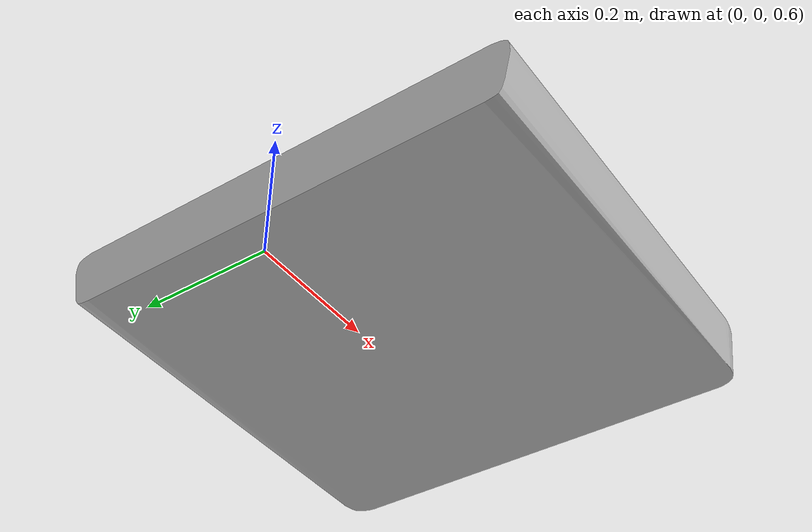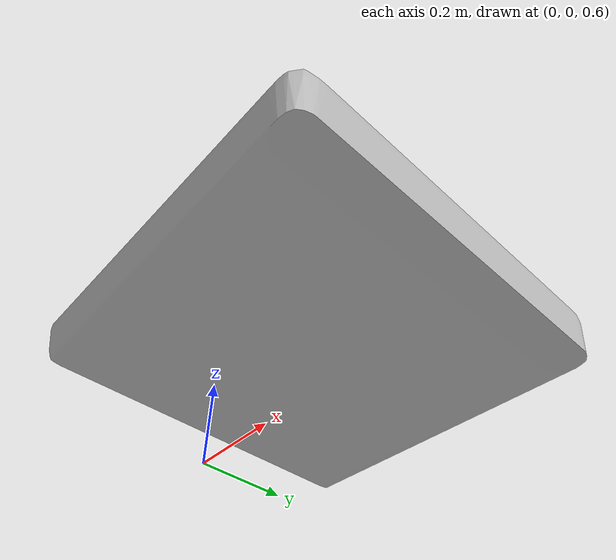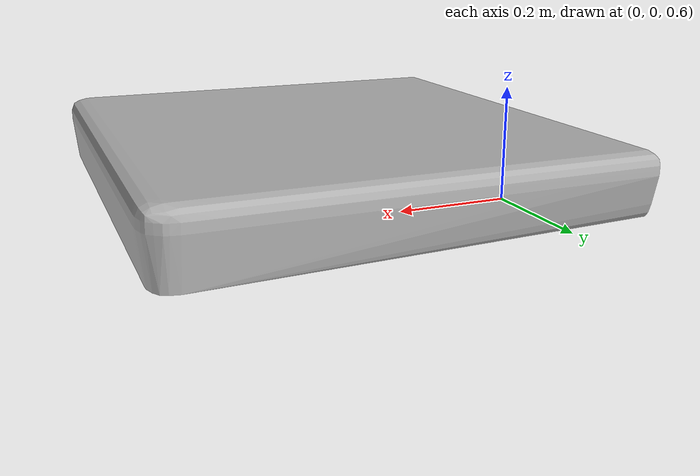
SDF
<?xml version='1.0' encoding='utf-8'?>
<sdf version="1.7">
  <model name="work_desk">
    <link name="base_link">
      <inertial>
        <mass>23.000000</mass>
        <pose>0.000649 0.678391 0.001222 0 0 0</pose>
        <inertia>
          <ixx>1.914762</ixx>
          <iyy>6.127021</iyy>
          <izz>5.364524</izz>
          <ixy>-0.004533</ixy>
          <ixz>0.000683</ixz>
          <iyz>-0.002133</iyz>
        </inertia>
      </inertial>
      <visual name="visual">
        <geometry>
          <mesh>
            <uri>work_desk.gltf</uri>
          </mesh>
        </geometry>
      </visual>
      <collision name="collision_0">
        <surface>
          <friction>
            <ode>
              <mu>0.500</mu>
              <mu2>0.500</mu2>
            </ode>
          </friction>
        </surface>
        <geometry>
          <mesh>
            <uri>work_desk_collision_0.obj</uri>
          </mesh>
        </geometry>
      </collision>
      <collision name="collision_1">
        <surface>
          <friction>
            <ode>
              <mu>0.500</mu>
              <mu2>0.500</mu2>
            </ode>
          </friction>
        </surface>
        <geometry>
          <mesh>
            <uri>work_desk_collision_1.obj</uri>
          </mesh>
        </geometry>
      </collision>
      <collision name="collision_2">
        <surface>
          <friction>
            <ode>
              <mu>0.500</mu>
              <mu2>0.500</mu2>
            </ode>
          </friction>
        </surface>
        <geometry>
          <mesh>
            <uri>work_desk_collision_2.obj</uri>
          </mesh>
        </geometry>
      </collision>
      <collision name="collision_3">
        <surface>
          <friction>
            <ode>
              <mu>0.500</mu>
              <mu2>0.500</mu2>
            </ode>
          </friction>
        </surface>
        <geometry>
          <mesh>
            <uri>work_desk_collision_3.obj</uri>
          </mesh>
        </geometry>
      </collision>
      <collision name="collision_4">
        <surface>
          <friction>
            <ode>
              <mu>0.500</mu>
              <mu2>0.500</mu2>
            </ode>
          </friction>
        </surface>
        <geometry>
          <mesh>
            <uri>work_desk_collision_4.obj</uri>
          </mesh>
        </geometry>
      </collision>
      <collision name="collision_5">
        <surface>
          <friction>
            <ode>
              <mu>0.500</mu>
              <mu2>0.500</mu2>
            </ode>
          </friction>
        </surface>
        <geometry>
          <mesh>
            <uri>work_desk_collision_5.obj</uri>
          </mesh>
        </geometry>
      </collision>
      <collision name="collision_6">
        <surface>
          <friction>
            <ode>
              <mu>0.500</mu>
              <mu2>0.500</mu2>
            </ode>
          </friction>
        </surface>
        <geometry>
          <mesh>
            <uri>work_desk_collision_6.obj</uri>
          </mesh>
        </geometry>
      </collision>
    </link>
  </model>
</sdf>
